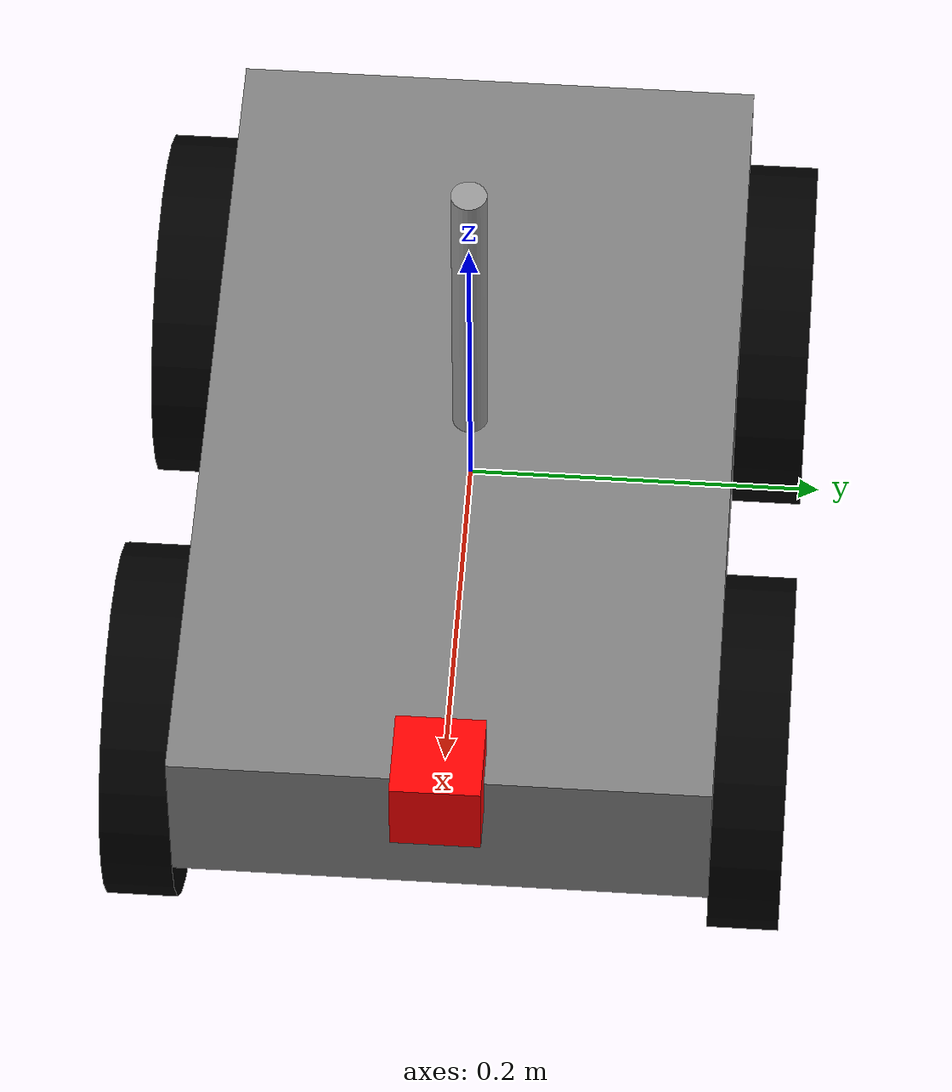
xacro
<?xml version="1.0"?>
<robot xmlns:xacro="http://www.ros.org/wiki/xacro" name="main_bot_description">

  <!-- Constants -->
  <xacro:property name="base_width" value="0.3"/>
  <xacro:property name="base_length" value="0.5"/>
  <xacro:property name="base_height" value="0.1"/>
  <xacro:property name="wheel_radius" value="0.1"/>
  <xacro:property name="wheel_width" value="0.04"/>
  <xacro:property name="wheel_mass" value="0.5"/>
  <xacro:property name="base_mass" value="5.0"/>

  <!-- Base Link -->
  <link name="base_link">
    <visual>
      <geometry>
        <box size="${base_length} ${base_width} ${base_height}"/>
      </geometry>
      <material name="blue">
        <color rgba="0.5 0.5 0.5 1.0"/>
      </material>
    </visual>
    <collision>
      <geometry>
        <box size="${base_length} ${base_width} ${base_height}"/>
      </geometry>
    </collision>
    <inertial>
      <mass value="${base_mass}"/>
      <inertia ixx="1.0" ixy="0.0" ixz="0.0" iyy="1.0" iyz="0.0" izz="1.0"/>
    </inertial>
  </link>

  <!-- Lidar Link -->
  <link name="lidar_link">
    <visual>
      <geometry>
        <box size="0.05 0.05 0.05"/>
      </geometry>
      <material name="red">
        <color rgba="1.0 0.0 0.0 1.0"/>
      </material>
    </visual>
    <collision>
      <geometry>
        <box size="0.05 0.05 0.05"/>
      </geometry>
    </collision>
    <inertial>
      <mass value="0.1"/>
      <inertia ixx="0.0001" ixy="0.0" ixz="0.0" iyy="0.0001" iyz="0.0" izz="0.0001"/>
    </inertial>
  </link>

  <joint name="lidar_joint" type="fixed">
    <parent link="base_link"/>
    <child link="lidar_link"/>
    <origin xyz="${base_length/2} 0 ${base_height/2}" rpy="0 0 0"/>
  </joint>

  <!-- Antenna Link -->
  <link name="antenna_link">
    <visual>
      <geometry>
        <cylinder radius="0.01" length="0.3"/>
      </geometry>
      <material name="grey"/>
    </visual>
    <collision>
      <geometry>
        <cylinder radius="0.01" length="0.3"/>
      </geometry>
    </collision>
    <inertial>
      <mass value="0.1"/>
      <inertia ixx="0.0001" ixy="0.0" ixz="0.0" iyy="0.0001" iyz="0.0" izz="0.0001"/>
    </inertial>
  </link>

  <joint name="antenna_joint" type="prismatic">
    <parent link="base_link"/>
    <child link="antenna_link"/>
    <origin xyz="0 0 ${base_height}" rpy="0 0 0"/>
    <axis xyz="0 0 1"/>
    <limit lower="0.0" upper="0.5" effort="10.0" velocity="0.1"/>
  </joint>

  <transmission name="antenna_trans">
    <type>transmission_interface/SimpleTransmission</type>
    <joint name="antenna_joint">
      <hardwareInterface>hardware_interface/PositionJointInterface</hardwareInterface>
    </joint>
    <actuator name="antenna_motor">
      <hardwareInterface>hardware_interface/PositionJointInterface</hardwareInterface>
      <mechanicalReduction>1</mechanicalReduction>
    </actuator>
  </transmission>

  <!-- Wheel Macro -->
  <xacro:macro name="wheel" params="prefix x_offset y_offset">
    <link name="${prefix}_wheel_link">
      <visual>
        <geometry>
          <cylinder radius="${wheel_radius}" length="${wheel_width}"/>
        </geometry>
        <material name="black">
          <color rgba="0.0 0.0 0.0 1.0"/>
        </material>
      </visual>
      <collision>
        <geometry>
          <cylinder radius="${wheel_radius}" length="${wheel_width}"/>
        </geometry>
      </collision>
      <inertial>
        <mass value="${wheel_mass}"/>
        <inertia ixx="0.001" ixy="0.0" ixz="0.0" iyy="0.001" iyz="0.0" izz="0.001"/>
      </inertial>
    </link>

    <joint name="${prefix}_wheel_joint" type="continuous">
      <parent link="base_link"/>
      <child link="${prefix}_wheel_link"/>
      <origin xyz="${x_offset} ${y_offset} -0.05" rpy="-1.5707 0 0"/>
      <axis xyz="0 0 1"/>
    </joint>
  </xacro:macro>

  <!-- Wheels -->
  <xacro:wheel prefix="front_left" x_offset="0.15" y_offset="0.17"/>
  <xacro:wheel prefix="front_right" x_offset="0.15" y_offset="-0.17"/>
  <xacro:wheel prefix="rear_left" x_offset="-0.15" y_offset="0.17"/>
  <xacro:wheel prefix="rear_right" x_offset="-0.15" y_offset="-0.17"/>

  <!-- Gazebo Lidar Plugin -->
  <gazebo reference="lidar_link">
    <sensor type="ray" name="lidar_sensor">
      <pose>0 0 0 0 0 0</pose>
      <visualize>true</visualize>
      <update_rate>10</update_rate>
      <ray>
        <scan>
          <horizontal>
            <samples>360</samples>
            <resolution>1</resolution>
            <min_angle>-1.570796</min_angle>
            <max_angle>1.570796</max_angle>
          </horizontal>
        </scan>
        <range>
          <min>0.1</min>
          <max>12.0</max>
          <resolution>0.01</resolution>
        </range>
      </ray>
      <plugin name="gazebo_ros_lidar_controller" filename="libgazebo_ros_ray_sensor.so">
        <ros>
            <namespace>/demo</namespace>
            <argument>--ros-args --remap ~/out:=scan</argument>
        </ros>
        <output_type>sensor_msgs/LaserScan</output_type>
        <frame_name>lidar_link</frame_name>
      </plugin>
    </sensor>
  </gazebo>

  <!-- Gazebo Plugin for Differential Drive -->
  <gazebo>
    <plugin name="gazebo_ros2_control" filename="libgazebo_ros2_control.so">
      <robot_param>robot_description</robot_param>
      <robot_param_node>robot_state_publisher</robot_param_node>
      <parameters>$(find main_bot_description)/config/controllers.yaml</parameters>
    </plugin>

    <plugin name="differential_drive_controller" filename="libgazebo_ros_diff_drive.so">
      <left_joint>front_left_wheel_joint</left_joint>
      <right_joint>front_right_wheel_joint</right_joint>
      <wheel_separation>${base_width}</wheel_separation>
      <wheel_diameter>${2*wheel_radius}</wheel_diameter>
      <robot_base_frame>base_link</robot_base_frame>
      <publish_odom>true</publish_odom>
      <publish_odom_tf>true</publish_odom_tf>
      <publish_wheel_tf>true</publish_wheel_tf>
    </plugin>
  </gazebo>

</robot>
